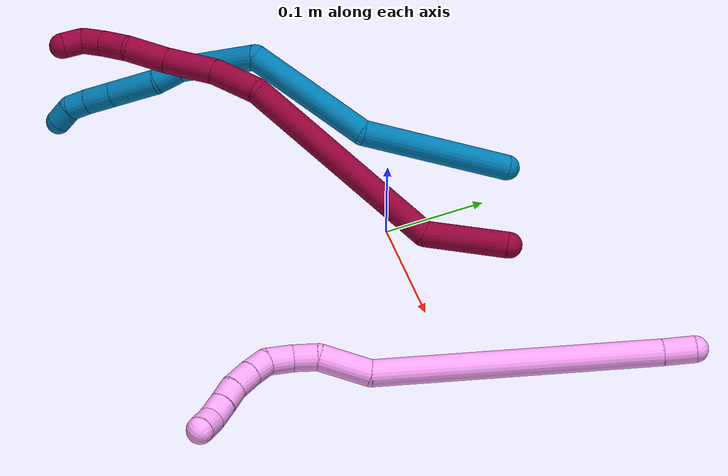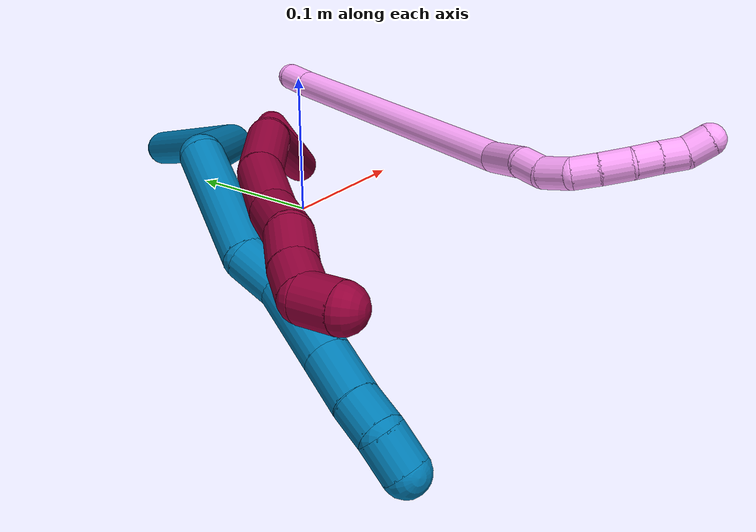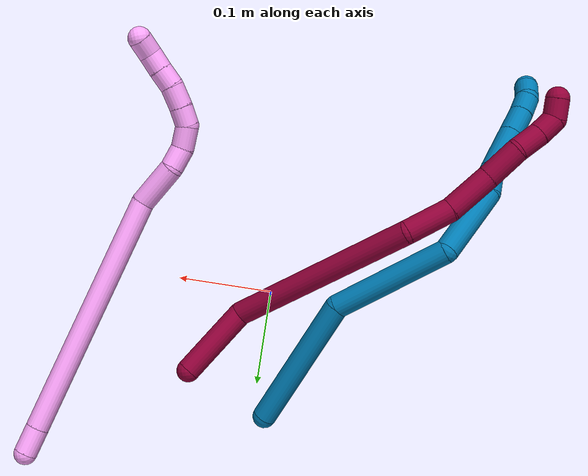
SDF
<sdf version="1.7">
 <world name="default">
  <model name="photoneo_s_sensor">
   <static>1</static>
   <pose>0 0 2 1.57079 1.57079 3.14159</pose>
   <link name="link">
    <inertial><mass>0.1</mass></inertial>
    <sensor name="sensor" type="depth">
     <update_rate>30</update_rate>
     <camera>
      <horizontal_fov>1.22</horizontal_fov>
      <image><width>1920</width><height>1200</height><format>B8G8R8</format></image>
      <clip><near>0.1</near><far>4</far></clip>
      <depth_camera><output>points</output></depth_camera>
     </camera>
     <plugin name="camera_plugin" filename="libgazebo_ros_depth_camera.so">
      <baseline>0.2</baseline>
      <alwaysOn>1</alwaysOn>
      <updateRate>0.0</updateRate>
      <cameraName>camera_ir</cameraName>
      <imageTopicName>/camera/color/image_raw</imageTopicName>
      <cameraInfoTopicName>/camera/color/camera_info</cameraInfoTopicName>
      <depthImageTopicName>/camera/depth/image_raw</depthImageTopicName>
      <depthImageCameraInfoTopicName>/camera/depth/camera_info</depthImageCameraInfoTopicName>
      <pointCloudTopicName>/camera/depth/points</pointCloudTopicName>
      <frameName>fr_optical</frameName>
      <pointCloudCutoff>0.1</pointCloudCutoff>
      <pointCloudCutoffMax>2.0</pointCloudCutoffMax>
      <distortionK1>0</distortionK1>
      <distortionK2>0</distortionK2>
      <distortionK3>0</distortionK3>
      <distortionT1>0</distortionT1>
      <distortionT2>0</distortionT2>
      <CxPrime>0</CxPrime>
      <Cx>0</Cx>
      <Cy>0</Cy>
      <focalLength>0</focalLength>
      <hackBaseline>0</hackBaseline>
     </plugin>
    </sensor>
   </link>
  </model>
  <model name="bin">
   <static>1</static>
   <link name="bottom">
    <collision name="collision-bottom">
     <pose>0 0 -0.01 0 -0 0</pose>
     <geometry><box><size>0.8 0.6 0.02</size></box></geometry>
     <surface>
      <friction><ode><mu>100</mu><mu2>100</mu2></ode></friction>
      <contact><collide_bitmask>65535</collide_bitmask></contact>
     </surface>
    </collision>
   </link>
   <link name="west_wall">
    <collision name="collision-west_wall">
     <pose>-0.41 0 0.1 0 -0 0</pose>
     <geometry><box><size>0.02 0.6 0.2</size></box></geometry>
     <surface>
      <friction><ode><mu>100</mu><mu2>100</mu2></ode></friction>
      <contact><collide_bitmask>65535</collide_bitmask></contact>
     </surface>
    </collision>
   </link>
   <link name="east_wall">
    <collision name="collision-east_wall">
     <pose>0.41 0 0.1 0 -0 0</pose>
     <geometry><box><size>0.02 0.6 0.2</size></box></geometry>
     <surface>
      <friction><ode><mu>100</mu><mu2>100</mu2></ode></friction>
      <contact><collide_bitmask>65535</collide_bitmask></contact>
     </surface>
    </collision>
   </link>
   <link name="south_wall">
    <collision name="collision-south_wall">
     <pose>0 -0.31 0.1 0 -0 0</pose>
     <geometry><box><size>0.8 0.02 0.2</size></box></geometry>
     <surface>
      <friction><ode><mu>100</mu><mu2>100</mu2></ode></friction>
      <contact><collide_bitmask>65535</collide_bitmask></contact>
     </surface>
    </collision>
   </link>
   <link name="north_wall">
    <collision name="collision-north_wall">
     <pose>0 0.31 0.1 0 -0 0</pose>
     <geometry><box><size>0.8 0.02 0.2</size></box></geometry>
     <surface>
      <friction><ode><mu>100</mu><mu2>100</mu2></ode></friction>
      <contact><collide_bitmask>65535</collide_bitmask></contact>
     </surface>
    </collision>
   </link>
  </model>
  <model name="4">
   <static>0</static>
   <link name="4">
    <collision name="collision-cylinder-e_1_1_4">
     <pose>-0.004162 -0.011198 -0.00917 2.25696 -0.279977 -0.578366</pose>
     <geometry><cylinder><radius>0.0125</radius><length>0.03012</length></cylinder></geometry>
     <surface>
      <friction><ode><mu>1.16</mu><mu2>1.16</mu2><slip1>0</slip1><slip2>0</slip2></ode></friction>
      <contact><ode><kp>1e+06</kp><kd>1</kd><max_vel>0</max_vel><min_depth>0.001</min_depth></ode></contact>
     </surface>
    </collision>
    <visual name="visual-cylinder-e_1_1_4">
     <pose>-0.004162 -0.011198 -0.00917 2.25696 -0.279977 -0.578366</pose>
     <geometry><cylinder><radius>0.0125</radius><length>0.03012</length></cylinder></geometry>
     <material><ambient>1 0.65098 0.996078 1</ambient></material>
    </visual>
    <collision name="collision-cylinder-e_2_4_5">
     <pose>-0.049833 -0.119477 -0.099724 2.26846 -0.316647 -0.659387</pose>
     <geometry><cylinder><radius>0.0125</radius><length>0.266617</length></cylinder></geometry>
     <surface>
      <friction><ode><mu>1.16</mu><mu2>1.16</mu2><slip1>0</slip1><slip2>0</slip2></ode></friction>
      <contact><ode><kp>1e+06</kp><kd>1</kd><max_vel>0</max_vel><min_depth>0.001</min_depth></ode></contact>
     </surface>
    </collision>
    <visual name="visual-cylinder-e_2_4_5">
     <pose>-0.049833 -0.119477 -0.099724 2.26846 -0.316647 -0.659387</pose>
     <geometry><cylinder><radius>0.0125</radius><length>0.266617</length></cylinder></geometry>
     <material><ambient>1 0.65098 0.996078 1</ambient></material>
    </visual>
    <collision name="collision-cylinder-e_3_5_6">
     <pose>-0.102844 -0.227189 -0.200248 2.63463 -0.483692 -1.52185</pose>
     <geometry><cylinder><radius>0.0125</radius><length>0.049461</length></cylinder></geometry>
     <surface>
      <friction><ode><mu>1.16</mu><mu2>1.16</mu2><slip1>0</slip1><slip2>0</slip2></ode></friction>
      <contact><ode><kp>1e+06</kp><kd>1</kd><max_vel>0</max_vel><min_depth>0.001</min_depth></ode></contact>
     </surface>
    </collision>
    <visual name="visual-cylinder-e_3_5_6">
     <pose>-0.102844 -0.227189 -0.200248 2.63463 -0.483692 -1.52185</pose>
     <geometry><cylinder><radius>0.0125</radius><length>0.049461</length></cylinder></geometry>
     <material><ambient>1 0.65098 0.996078 1</ambient></material>
    </visual>
    <collision name="collision-cylinder-e_4_6_7">
     <pose>-0.117365 -0.246194 -0.227201 2.3215 -0.25778 -0.579547</pose>
     <geometry><cylinder><radius>0.0125</radius><length>0.02369</length></cylinder></geometry>
     <surface>
      <friction><ode><mu>1.16</mu><mu2>1.16</mu2><slip1>0</slip1><slip2>0</slip2></ode></friction>
      <contact><ode><kp>1e+06</kp><kd>1</kd><max_vel>0</max_vel><min_depth>0.001</min_depth></ode></contact>
     </surface>
    </collision>
    <visual name="visual-cylinder-e_4_6_7">
     <pose>-0.117365 -0.246194 -0.227201 2.3215 -0.25778 -0.579547</pose>
     <geometry><cylinder><radius>0.0125</radius><length>0.02369</length></cylinder></geometry>
     <material><ambient>1 0.65098 0.996078 1</ambient></material>
    </visual>
    <collision name="collision-cylinder-e_5_7_8">
     <pose>-0.127053 -0.263875 -0.240199 2.07908 -0.55931 -0.909183</pose>
     <geometry><cylinder><radius>0.0125</radius><length>0.025137</length></cylinder></geometry>
     <surface>
      <friction><ode><mu>1.16</mu><mu2>1.16</mu2><slip1>0</slip1><slip2>0</slip2></ode></friction>
      <contact><ode><kp>1e+06</kp><kd>1</kd><max_vel>0</max_vel><min_depth>0.001</min_depth></ode></contact>
     </surface>
    </collision>
    <visual name="visual-cylinder-e_5_7_8">
     <pose>-0.127053 -0.263875 -0.240199 2.07908 -0.55931 -0.909183</pose>
     <geometry><cylinder><radius>0.0125</radius><length>0.025137</length></cylinder></geometry>
     <material><ambient>1 0.65098 0.996078 1</ambient></material>
    </visual>
    <collision name="collision-cylinder-e_6_8_9">
     <pose>-0.139417 -0.281896 -0.244267 1.44339 -0.575103 -0.509258</pose>
     <geometry><cylinder><radius>0.0125</radius><length>0.02094</length></cylinder></geometry>
     <surface>
      <friction><ode><mu>1.16</mu><mu2>1.16</mu2><slip1>0</slip1><slip2>0</slip2></ode></friction>
      <contact><ode><kp>1e+06</kp><kd>1</kd><max_vel>0</max_vel><min_depth>0.001</min_depth></ode></contact>
     </surface>
    </collision>
    <visual name="visual-cylinder-e_6_8_9">
     <pose>-0.139417 -0.281896 -0.244267 1.44339 -0.575103 -0.509258</pose>
     <geometry><cylinder><radius>0.0125</radius><length>0.02094</length></cylinder></geometry>
     <material><ambient>1 0.65098 0.996078 1</ambient></material>
    </visual>
    <collision name="collision-cylinder-e_7_9_10">
     <pose>-0.151477 -0.300409 -0.240886 1.34366 -0.564271 -0.453114</pose>
     <geometry><cylinder><radius>0.0125</radius><length>0.023803</length></cylinder></geometry>
     <surface>
      <friction><ode><mu>1.16</mu><mu2>1.16</mu2><slip1>0</slip1><slip2>0</slip2></ode></friction>
      <contact><ode><kp>1e+06</kp><kd>1</kd><max_vel>0</max_vel><min_depth>0.001</min_depth></ode></contact>
     </surface>
    </collision>
    <visual name="visual-cylinder-e_7_9_10">
     <pose>-0.151477 -0.300409 -0.240886 1.34366 -0.564271 -0.453114</pose>
     <geometry><cylinder><radius>0.0125</radius><length>0.023803</length></cylinder></geometry>
     <material><ambient>1 0.65098 0.996078 1</ambient></material>
    </visual>
    <collision name="collision-cylinder-e_8_10_11">
     <pose>-0.162426 -0.318262 -0.234698 1.11753 -0.472915 -0.29907</pose>
     <geometry><cylinder><radius>0.0125</radius><length>0.020127</length></cylinder></geometry>
     <surface>
      <friction><ode><mu>1.16</mu><mu2>1.16</mu2><slip1>0</slip1><slip2>0</slip2></ode></friction>
      <contact><ode><kp>1e+06</kp><kd>1</kd><max_vel>0</max_vel><min_depth>0.001</min_depth></ode></contact>
     </surface>
    </collision>
    <visual name="visual-cylinder-e_8_10_11">
     <pose>-0.162426 -0.318262 -0.234698 1.11753 -0.472915 -0.29907</pose>
     <geometry><cylinder><radius>0.0125</radius><length>0.020127</length></cylinder></geometry>
     <material><ambient>1 0.65098 0.996078 1</ambient></material>
    </visual>
    <collision name="collision-cylinder-e_9_11_12">
     <pose>-0.171468 -0.334571 -0.227298 1.17215 -0.461872 -0.3097</pose>
     <geometry><cylinder><radius>0.0125</radius><length>0.020011</length></cylinder></geometry>
     <surface>
      <friction><ode><mu>1.16</mu><mu2>1.16</mu2><slip1>0</slip1><slip2>0</slip2></ode></friction>
      <contact><ode><kp>1e+06</kp><kd>1</kd><max_vel>0</max_vel><min_depth>0.001</min_depth></ode></contact>
     </surface>
    </collision>
    <visual name="visual-cylinder-e_9_11_12">
     <pose>-0.171468 -0.334571 -0.227298 1.17215 -0.461872 -0.3097</pose>
     <geometry><cylinder><radius>0.0125</radius><length>0.020011</length></cylinder></geometry>
     <material><ambient>1 0.65098 0.996078 1</ambient></material>
    </visual>
    <collision name="collision-cylinder-e_10_12_2">
     <pose>-0.183145 -0.348868 -0.22031 1.04433 -0.801518 -0.478284</pose>
     <geometry><cylinder><radius>0.0125</radius><length>0.020092</length></cylinder></geometry>
     <surface>
      <friction><ode><mu>1.16</mu><mu2>1.16</mu2><slip1>0</slip1><slip2>0</slip2></ode></friction>
      <contact><ode><kp>1e+06</kp><kd>1</kd><max_vel>0</max_vel><min_depth>0.001</min_depth></ode></contact>
     </surface>
    </collision>
    <visual name="visual-cylinder-e_10_12_2">
     <pose>-0.183145 -0.348868 -0.22031 1.04433 -0.801518 -0.478284</pose>
     <geometry><cylinder><radius>0.0125</radius><length>0.020092</length></cylinder></geometry>
     <material><ambient>1 0.65098 0.996078 1</ambient></material>
    </visual>
    <collision name="collision-sphere-2">
     <pose>-0.190362 -0.35491 -0.216798 0 -0 0</pose>
     <geometry><sphere><radius>0.0125</radius></sphere></geometry>
     <surface>
      <friction><ode><mu>1.16</mu><mu2>1.16</mu2><slip1>0</slip1><slip2>0</slip2></ode></friction>
      <contact><ode><kp>1e+06</kp><kd>1</kd><max_vel>0</max_vel><min_depth>0.001</min_depth></ode></contact>
     </surface>
    </collision>
    <visual name="visual-sphere-2">
     <pose>-0.190362 -0.35491 -0.216798 0 -0 0</pose>
     <geometry><sphere><radius>0.0125</radius></sphere></geometry>
     <material><ambient>1 0.65098 0.996078 1</ambient></material>
    </visual>
    <collision name="collision-sphere-12">
     <pose>-0.175927 -0.342826 -0.223821 0 -0 0</pose>
     <geometry><sphere><radius>0.0125</radius></sphere></geometry>
     <surface>
      <friction><ode><mu>1.16</mu><mu2>1.16</mu2><slip1>0</slip1><slip2>0</slip2></ode></friction>
      <contact><ode><kp>1e+06</kp><kd>1</kd><max_vel>0</max_vel><min_depth>0.001</min_depth></ode></contact>
     </surface>
    </collision>
    <visual name="visual-sphere-12">
     <pose>-0.175927 -0.342826 -0.223821 0 -0 0</pose>
     <geometry><sphere><radius>0.0125</radius></sphere></geometry>
     <material><ambient>1 0.65098 0.996078 1</ambient></material>
    </visual>
    <collision name="collision-sphere-11">
     <pose>-0.16701 -0.326316 -0.230775 0 -0 0</pose>
     <geometry><sphere><radius>0.0125</radius></sphere></geometry>
     <surface>
      <friction><ode><mu>1.16</mu><mu2>1.16</mu2><slip1>0</slip1><slip2>0</slip2></ode></friction>
      <contact><ode><kp>1e+06</kp><kd>1</kd><max_vel>0</max_vel><min_depth>0.001</min_depth></ode></contact>
     </surface>
    </collision>
    <visual name="visual-sphere-11">
     <pose>-0.16701 -0.326316 -0.230775 0 -0 0</pose>
     <geometry><sphere><radius>0.0125</radius></sphere></geometry>
     <material><ambient>1 0.65098 0.996078 1</ambient></material>
    </visual>
    <collision name="collision-sphere-10">
     <pose>-0.157842 -0.310207 -0.238621 0 -0 0</pose>
     <geometry><sphere><radius>0.0125</radius></sphere></geometry>
     <surface>
      <friction><ode><mu>1.16</mu><mu2>1.16</mu2><slip1>0</slip1><slip2>0</slip2></ode></friction>
      <contact><ode><kp>1e+06</kp><kd>1</kd><max_vel>0</max_vel><min_depth>0.001</min_depth></ode></contact>
     </surface>
    </collision>
    <visual name="visual-sphere-10">
     <pose>-0.157842 -0.310207 -0.238621 0 -0 0</pose>
     <geometry><sphere><radius>0.0125</radius></sphere></geometry>
     <material><ambient>1 0.65098 0.996078 1</ambient></material>
    </visual>
    <collision name="collision-sphere-9">
     <pose>-0.145112 -0.290611 -0.243151 0 -0 0</pose>
     <geometry><sphere><radius>0.0125</radius></sphere></geometry>
     <surface>
      <friction><ode><mu>1.16</mu><mu2>1.16</mu2><slip1>0</slip1><slip2>0</slip2></ode></friction>
      <contact><ode><kp>1e+06</kp><kd>1</kd><max_vel>0</max_vel><min_depth>0.001</min_depth></ode></contact>
     </surface>
    </collision>
    <visual name="visual-sphere-9">
     <pose>-0.145112 -0.290611 -0.243151 0 -0 0</pose>
     <geometry><sphere><radius>0.0125</radius></sphere></geometry>
     <material><ambient>1 0.65098 0.996078 1</ambient></material>
    </visual>
    <collision name="collision-sphere-4">
     <pose>-0.008323 -0.022396 -0.01834 0 -0 0</pose>
     <geometry><sphere><radius>0.0125</radius></sphere></geometry>
     <surface>
      <friction><ode><mu>1.16</mu><mu2>1.16</mu2><slip1>0</slip1><slip2>0</slip2></ode></friction>
      <contact><ode><kp>1e+06</kp><kd>1</kd><max_vel>0</max_vel><min_depth>0.001</min_depth></ode></contact>
     </surface>
    </collision>
    <visual name="visual-sphere-4">
     <pose>-0.008323 -0.022396 -0.01834 0 -0 0</pose>
     <geometry><sphere><radius>0.0125</radius></sphere></geometry>
     <material><ambient>1 0.65098 0.996078 1</ambient></material>
    </visual>
    <collision name="collision-sphere-1">
     <geometry><sphere><radius>0.0125</radius></sphere></geometry>
     <surface>
      <friction><ode><mu>1.16</mu><mu2>1.16</mu2><slip1>0</slip1><slip2>0</slip2></ode></friction>
      <contact><ode><kp>1e+06</kp><kd>1</kd><max_vel>0</max_vel><min_depth>0.001</min_depth></ode></contact>
     </surface>
    </collision>
    <visual name="visual-sphere-1">
     <geometry><sphere><radius>0.0125</radius></sphere></geometry>
     <material><ambient>1 0.65098 0.996078 1</ambient></material>
    </visual>
    <collision name="collision-sphere-8">
     <pose>-0.133722 -0.273182 -0.245383 0 -0 0</pose>
     <geometry><sphere><radius>0.0125</radius></sphere></geometry>
     <surface>
      <friction><ode><mu>1.16</mu><mu2>1.16</mu2><slip1>0</slip1><slip2>0</slip2></ode></friction>
      <contact><ode><kp>1e+06</kp><kd>1</kd><max_vel>0</max_vel><min_depth>0.001</min_depth></ode></contact>
     </surface>
    </collision>
    <visual name="visual-sphere-8">
     <pose>-0.133722 -0.273182 -0.245383 0 -0 0</pose>
     <geometry><sphere><radius>0.0125</radius></sphere></geometry>
     <material><ambient>1 0.65098 0.996078 1</ambient></material>
    </visual>
    <collision name="collision-sphere-5">
     <pose>-0.091343 -0.216559 -0.181108 0 -0 0</pose>
     <geometry><sphere><radius>0.0125</radius></sphere></geometry>
     <surface>
      <friction><ode><mu>1.16</mu><mu2>1.16</mu2><slip1>0</slip1><slip2>0</slip2></ode></friction>
      <contact><ode><kp>1e+06</kp><kd>1</kd><max_vel>0</max_vel><min_depth>0.001</min_depth></ode></contact>
     </surface>
    </collision>
    <visual name="visual-sphere-5">
     <pose>-0.091343 -0.216559 -0.181108 0 -0 0</pose>
     <geometry><sphere><radius>0.0125</radius></sphere></geometry>
     <material><ambient>1 0.65098 0.996078 1</ambient></material>
    </visual>
    <collision name="collision-sphere-6">
     <pose>-0.114345 -0.237819 -0.219388 0 -0 0</pose>
     <geometry><sphere><radius>0.0125</radius></sphere></geometry>
     <surface>
      <friction><ode><mu>1.16</mu><mu2>1.16</mu2><slip1>0</slip1><slip2>0</slip2></ode></friction>
      <contact><ode><kp>1e+06</kp><kd>1</kd><max_vel>0</max_vel><min_depth>0.001</min_depth></ode></contact>
     </surface>
    </collision>
    <visual name="visual-sphere-6">
     <pose>-0.114345 -0.237819 -0.219388 0 -0 0</pose>
     <geometry><sphere><radius>0.0125</radius></sphere></geometry>
     <material><ambient>1 0.65098 0.996078 1</ambient></material>
    </visual>
    <collision name="collision-sphere-7">
     <pose>-0.120385 -0.254569 -0.235014 0 -0 0</pose>
     <geometry><sphere><radius>0.0125</radius></sphere></geometry>
     <surface>
      <friction><ode><mu>1.16</mu><mu2>1.16</mu2><slip1>0</slip1><slip2>0</slip2></ode></friction>
      <contact><ode><kp>1e+06</kp><kd>1</kd><max_vel>0</max_vel><min_depth>0.001</min_depth></ode></contact>
     </surface>
    </collision>
    <visual name="visual-sphere-7">
     <pose>-0.120385 -0.254569 -0.235014 0 -0 0</pose>
     <geometry><sphere><radius>0.0125</radius></sphere></geometry>
     <material><ambient>1 0.65098 0.996078 1</ambient></material>
    </visual>
    <inertial>
     <pose>-0.082756 -0.178117 -0.145474 0 -0 0</pose>
     <mass>0.5</mass>
     <inertia>
      <ixx>0.000248</ixx>
      <ixy>0</ixy>
      <ixz>0</ixz>
      <iyy>-0.001542</iyy>
      <iyz>0</iyz>
      <izz>0.001666</izz>
     </inertia>
    </inertial>
   </link>
   <pose>0.232849 0.211032 0.013531 1.42234 1.20057 1.80906</pose>
  </model>
  <model name="8">
   <static>0</static>
   <link name="8">
    <collision name="collision-cylinder-e_1_1_4">
     <pose>-0.009166 -0.029802 0.026218 0.849275 -0.226952 -0.102967</pose>
     <geometry><cylinder><radius>0.0125</radius><length>0.081475</length></cylinder></geometry>
     <surface>
      <friction><ode><mu>1.16</mu><mu2>1.16</mu2><slip1>0</slip1><slip2>0</slip2></ode></friction>
      <contact><ode><kp>1e+06</kp><kd>1</kd><max_vel>0</max_vel><min_depth>0.001</min_depth></ode></contact>
     </surface>
    </collision>
    <visual name="visual-cylinder-e_1_1_4">
     <pose>-0.009166 -0.029802 0.026218 0.849275 -0.226952 -0.102967</pose>
     <geometry><cylinder><radius>0.0125</radius><length>0.081475</length></cylinder></geometry>
     <material><ambient>0.584314 0 0.227451 1</ambient></material>
    </visual>
    <collision name="collision-cylinder-e_2_4_5">
     <pose>-0.093815 -0.122649 0.086512 1.07529 -0.811337 -0.501381</pose>
     <geometry><cylinder><radius>0.0125</radius><length>0.208168</length></cylinder></geometry>
     <surface>
      <friction><ode><mu>1.16</mu><mu2>1.16</mu2><slip1>0</slip1><slip2>0</slip2></ode></friction>
      <contact><ode><kp>1e+06</kp><kd>1</kd><max_vel>0</max_vel><min_depth>0.001</min_depth></ode></contact>
     </surface>
    </collision>
    <visual name="visual-cylinder-e_2_4_5">
     <pose>-0.093815 -0.122649 0.086512 1.07529 -0.811337 -0.501381</pose>
     <geometry><cylinder><radius>0.0125</radius><length>0.208168</length></cylinder></geometry>
     <material><ambient>0.584314 0 0.227451 1</ambient></material>
    </visual>
    <collision name="collision-cylinder-e_3_5_6">
     <pose>-0.17739 -0.207309 0.129034 1.19822 -0.335525 -0.230259</pose>
     <geometry><cylinder><radius>0.0125</radius><length>0.049153</length></cylinder></geometry>
     <surface>
      <friction><ode><mu>1.16</mu><mu2>1.16</mu2><slip1>0</slip1><slip2>0</slip2></ode></friction>
      <contact><ode><kp>1e+06</kp><kd>1</kd><max_vel>0</max_vel><min_depth>0.001</min_depth></ode></contact>
     </surface>
    </collision>
    <visual name="visual-cylinder-e_3_5_6">
     <pose>-0.17739 -0.207309 0.129034 1.19822 -0.335525 -0.230259</pose>
     <geometry><cylinder><radius>0.0125</radius><length>0.049153</length></cylinder></geometry>
     <material><ambient>0.584314 0 0.227451 1</ambient></material>
    </visual>
    <collision name="collision-cylinder-e_4_6_7">
     <pose>-0.192493 -0.248697 0.151417 0.956887 -0.282091 -0.147015</pose>
     <geometry><cylinder><radius>0.0125</radius><length>0.050373</length></cylinder></geometry>
     <surface>
      <friction><ode><mu>1.16</mu><mu2>1.16</mu2><slip1>0</slip1><slip2>0</slip2></ode></friction>
      <contact><ode><kp>1e+06</kp><kd>1</kd><max_vel>0</max_vel><min_depth>0.001</min_depth></ode></contact>
     </surface>
    </collision>
    <visual name="visual-cylinder-e_4_6_7">
     <pose>-0.192493 -0.248697 0.151417 0.956887 -0.282091 -0.147015</pose>
     <geometry><cylinder><radius>0.0125</radius><length>0.050373</length></cylinder></geometry>
     <material><ambient>0.584314 0 0.227451 1</ambient></material>
    </visual>
    <collision name="collision-cylinder-e_5_7_8">
     <pose>-0.207748 -0.282274 0.177114 0.865116 -0.426656 -0.199377</pose>
     <geometry><cylinder><radius>0.0125</radius><length>0.03984</length></cylinder></geometry>
     <surface>
      <friction><ode><mu>1.16</mu><mu2>1.16</mu2><slip1>0</slip1><slip2>0</slip2></ode></friction>
      <contact><ode><kp>1e+06</kp><kd>1</kd><max_vel>0</max_vel><min_depth>0.001</min_depth></ode></contact>
     </surface>
    </collision>
    <visual name="visual-cylinder-e_5_7_8">
     <pose>-0.207748 -0.282274 0.177114 0.865116 -0.426656 -0.199377</pose>
     <geometry><cylinder><radius>0.0125</radius><length>0.03984</length></cylinder></geometry>
     <material><ambient>0.584314 0 0.227451 1</ambient></material>
    </visual>
    <collision name="collision-cylinder-e_6_8_9">
     <pose>-0.218343 -0.307945 0.195262 1.07703 -0.172742 -0.103364</pose>
     <geometry><cylinder><radius>0.0125</radius><length>0.027363</length></cylinder></geometry>
     <surface>
      <friction><ode><mu>1.16</mu><mu2>1.16</mu2><slip1>0</slip1><slip2>0</slip2></ode></friction>
      <contact><ode><kp>1e+06</kp><kd>1</kd><max_vel>0</max_vel><min_depth>0.001</min_depth></ode></contact>
     </surface>
    </collision>
    <visual name="visual-cylinder-e_6_8_9">
     <pose>-0.218343 -0.307945 0.195262 1.07703 -0.172742 -0.103364</pose>
     <geometry><cylinder><radius>0.0125</radius><length>0.027363</length></cylinder></geometry>
     <material><ambient>0.584314 0 0.227451 1</ambient></material>
    </visual>
    <collision name="collision-cylinder-e_7_9_10">
     <pose>-0.222787 -0.328892 0.208071 0.955273 -0.18599 -0.096474</pose>
     <geometry><cylinder><radius>0.0125</radius><length>0.022631</length></cylinder></geometry>
     <surface>
      <friction><ode><mu>1.16</mu><mu2>1.16</mu2><slip1>0</slip1><slip2>0</slip2></ode></friction>
      <contact><ode><kp>1e+06</kp><kd>1</kd><max_vel>0</max_vel><min_depth>0.001</min_depth></ode></contact>
     </surface>
    </collision>
    <visual name="visual-cylinder-e_7_9_10">
     <pose>-0.222787 -0.328892 0.208071 0.955273 -0.18599 -0.096474</pose>
     <geometry><cylinder><radius>0.0125</radius><length>0.022631</length></cylinder></geometry>
     <material><ambient>0.584314 0 0.227451 1</ambient></material>
    </visual>
    <collision name="collision-cylinder-e_8_10_2">
     <pose>-0.226126 -0.340456 0.224615 0.240673 -0.118993 -0.014405</pose>
     <geometry><cylinder><radius>0.0125</radius><length>0.020996</length></cylinder></geometry>
     <surface>
      <friction><ode><mu>1.16</mu><mu2>1.16</mu2><slip1>0</slip1><slip2>0</slip2></ode></friction>
      <contact><ode><kp>1e+06</kp><kd>1</kd><max_vel>0</max_vel><min_depth>0.001</min_depth></ode></contact>
     </surface>
    </collision>
    <visual name="visual-cylinder-e_8_10_2">
     <pose>-0.226126 -0.340456 0.224615 0.240673 -0.118993 -0.014405</pose>
     <geometry><cylinder><radius>0.0125</radius><length>0.020996</length></cylinder></geometry>
     <material><ambient>0.584314 0 0.227451 1</ambient></material>
    </visual>
    <collision name="collision-sphere-2">
     <pose>-0.227372 -0.342941 0.234739 0 -0 0</pose>
     <geometry><sphere><radius>0.0125</radius></sphere></geometry>
     <surface>
      <friction><ode><mu>1.16</mu><mu2>1.16</mu2><slip1>0</slip1><slip2>0</slip2></ode></friction>
      <contact><ode><kp>1e+06</kp><kd>1</kd><max_vel>0</max_vel><min_depth>0.001</min_depth></ode></contact>
     </surface>
    </collision>
    <visual name="visual-sphere-2">
     <pose>-0.227372 -0.342941 0.234739 0 -0 0</pose>
     <geometry><sphere><radius>0.0125</radius></sphere></geometry>
     <material><ambient>0.584314 0 0.227451 1</ambient></material>
    </visual>
    <collision name="collision-sphere-10">
     <pose>-0.22488 -0.337972 0.214492 0 -0 0</pose>
     <geometry><sphere><radius>0.0125</radius></sphere></geometry>
     <surface>
      <friction><ode><mu>1.16</mu><mu2>1.16</mu2><slip1>0</slip1><slip2>0</slip2></ode></friction>
      <contact><ode><kp>1e+06</kp><kd>1</kd><max_vel>0</max_vel><min_depth>0.001</min_depth></ode></contact>
     </surface>
    </collision>
    <visual name="visual-sphere-10">
     <pose>-0.22488 -0.337972 0.214492 0 -0 0</pose>
     <geometry><sphere><radius>0.0125</radius></sphere></geometry>
     <material><ambient>0.584314 0 0.227451 1</ambient></material>
    </visual>
    <collision name="collision-sphere-9">
     <pose>-0.220695 -0.319813 0.20165 0 -0 0</pose>
     <geometry><sphere><radius>0.0125</radius></sphere></geometry>
     <surface>
      <friction><ode><mu>1.16</mu><mu2>1.16</mu2><slip1>0</slip1><slip2>0</slip2></ode></friction>
      <contact><ode><kp>1e+06</kp><kd>1</kd><max_vel>0</max_vel><min_depth>0.001</min_depth></ode></contact>
     </surface>
    </collision>
    <visual name="visual-sphere-9">
     <pose>-0.220695 -0.319813 0.20165 0 -0 0</pose>
     <geometry><sphere><radius>0.0125</radius></sphere></geometry>
     <material><ambient>0.584314 0 0.227451 1</ambient></material>
    </visual>
    <collision name="collision-sphere-4">
     <pose>-0.018333 -0.059603 0.052437 0 -0 0</pose>
     <geometry><sphere><radius>0.0125</radius></sphere></geometry>
     <surface>
      <friction><ode><mu>1.16</mu><mu2>1.16</mu2><slip1>0</slip1><slip2>0</slip2></ode></friction>
      <contact><ode><kp>1e+06</kp><kd>1</kd><max_vel>0</max_vel><min_depth>0.001</min_depth></ode></contact>
     </surface>
    </collision>
    <visual name="visual-sphere-4">
     <pose>-0.018333 -0.059603 0.052437 0 -0 0</pose>
     <geometry><sphere><radius>0.0125</radius></sphere></geometry>
     <material><ambient>0.584314 0 0.227451 1</ambient></material>
    </visual>
    <collision name="collision-sphere-1">
     <geometry><sphere><radius>0.0125</radius></sphere></geometry>
     <surface>
      <friction><ode><mu>1.16</mu><mu2>1.16</mu2><slip1>0</slip1><slip2>0</slip2></ode></friction>
      <contact><ode><kp>1e+06</kp><kd>1</kd><max_vel>0</max_vel><min_depth>0.001</min_depth></ode></contact>
     </surface>
    </collision>
    <visual name="visual-sphere-1">
     <geometry><sphere><radius>0.0125</radius></sphere></geometry>
     <material><ambient>0.584314 0 0.227451 1</ambient></material>
    </visual>
    <collision name="collision-sphere-8">
     <pose>-0.215991 -0.296077 0.188875 0 -0 0</pose>
     <geometry><sphere><radius>0.0125</radius></sphere></geometry>
     <surface>
      <friction><ode><mu>1.16</mu><mu2>1.16</mu2><slip1>0</slip1><slip2>0</slip2></ode></friction>
      <contact><ode><kp>1e+06</kp><kd>1</kd><max_vel>0</max_vel><min_depth>0.001</min_depth></ode></contact>
     </surface>
    </collision>
    <visual name="visual-sphere-8">
     <pose>-0.215991 -0.296077 0.188875 0 -0 0</pose>
     <geometry><sphere><radius>0.0125</radius></sphere></geometry>
     <material><ambient>0.584314 0 0.227451 1</ambient></material>
    </visual>
    <collision name="collision-sphere-5">
     <pose>-0.169298 -0.185695 0.120587 0 -0 0</pose>
     <geometry><sphere><radius>0.0125</radius></sphere></geometry>
     <surface>
      <friction><ode><mu>1.16</mu><mu2>1.16</mu2><slip1>0</slip1><slip2>0</slip2></ode></friction>
      <contact><ode><kp>1e+06</kp><kd>1</kd><max_vel>0</max_vel><min_depth>0.001</min_depth></ode></contact>
     </surface>
    </collision>
    <visual name="visual-sphere-5">
     <pose>-0.169298 -0.185695 0.120587 0 -0 0</pose>
     <geometry><sphere><radius>0.0125</radius></sphere></geometry>
     <material><ambient>0.584314 0 0.227451 1</ambient></material>
    </visual>
    <collision name="collision-sphere-6">
     <pose>-0.185482 -0.228923 0.137481 0 -0 0</pose>
     <geometry><sphere><radius>0.0125</radius></sphere></geometry>
     <surface>
      <friction><ode><mu>1.16</mu><mu2>1.16</mu2><slip1>0</slip1><slip2>0</slip2></ode></friction>
      <contact><ode><kp>1e+06</kp><kd>1</kd><max_vel>0</max_vel><min_depth>0.001</min_depth></ode></contact>
     </surface>
    </collision>
    <visual name="visual-sphere-6">
     <pose>-0.185482 -0.228923 0.137481 0 -0 0</pose>
     <geometry><sphere><radius>0.0125</radius></sphere></geometry>
     <material><ambient>0.584314 0 0.227451 1</ambient></material>
    </visual>
    <collision name="collision-sphere-7">
     <pose>-0.199504 -0.26847 0.165353 0 -0 0</pose>
     <geometry><sphere><radius>0.0125</radius></sphere></geometry>
     <surface>
      <friction><ode><mu>1.16</mu><mu2>1.16</mu2><slip1>0</slip1><slip2>0</slip2></ode></friction>
      <contact><ode><kp>1e+06</kp><kd>1</kd><max_vel>0</max_vel><min_depth>0.001</min_depth></ode></contact>
     </surface>
    </collision>
    <visual name="visual-sphere-7">
     <pose>-0.199504 -0.26847 0.165353 0 -0 0</pose>
     <geometry><sphere><radius>0.0125</radius></sphere></geometry>
     <material><ambient>0.584314 0 0.227451 1</ambient></material>
    </visual>
    <inertial>
     <pose>-0.125466 -0.169881 0.111878 0 -0 0</pose>
     <mass>0.5</mass>
     <inertia>
      <ixx>0.000261</ixx>
      <ixy>0</ixy>
      <ixz>0</ixz>
      <iyy>0.000315</iyy>
      <iyz>0</iyz>
      <izz>0.001116</izz>
     </inertia>
    </inertial>
   </link>
   <pose>0.073579 0.094807 0.026788 1.46545 1.13135 0.182804</pose>
  </model>
  <model name="9">
   <static>0</static>
   <link name="9">
    <collision name="collision-cylinder-e_1_1_4">
     <pose>3.2e-05 1.5e-05 0.073694 -0.000205 0.000435 0</pose>
     <geometry><cylinder><radius>0.0125</radius><length>0.147387</length></cylinder></geometry>
     <surface>
      <friction><ode><mu>1.16</mu><mu2>1.16</mu2><slip1>0</slip1><slip2>0</slip2></ode></friction>
      <contact><ode><kp>1e+06</kp><kd>1</kd><max_vel>0</max_vel><min_depth>0.001</min_depth></ode></contact>
     </surface>
    </collision>
    <visual name="visual-cylinder-e_1_1_4">
     <pose>3.2e-05 1.5e-05 0.073694 -0.000205 0.000435 0</pose>
     <geometry><cylinder><radius>0.0125</radius><length>0.147387</length></cylinder></geometry>
     <material><ambient>0 0.490196 0.709804 1</ambient></material>
    </visual>
    <collision name="collision-cylinder-e_2_4_5">
     <pose>-0.0302 -0.001762 0.202878 0.032282 -0.49908 -0.008228</pose>
     <geometry><cylinder><radius>0.0125</radius><length>0.126465</length></cylinder></geometry>
     <surface>
      <friction><ode><mu>1.16</mu><mu2>1.16</mu2><slip1>0</slip1><slip2>0</slip2></ode></friction>
      <contact><ode><kp>1e+06</kp><kd>1</kd><max_vel>0</max_vel><min_depth>0.001</min_depth></ode></contact>
     </surface>
    </collision>
    <visual name="visual-cylinder-e_2_4_5">
     <pose>-0.0302 -0.001762 0.202878 0.032282 -0.49908 -0.008228</pose>
     <geometry><cylinder><radius>0.0125</radius><length>0.126465</length></cylinder></geometry>
     <material><ambient>0 0.490196 0.709804 1</ambient></material>
    </visual>
    <collision name="collision-cylinder-e_3_5_6">
     <pose>-0.063043 -0.029914 0.289433 0.703652 -0.063224 -0.023216</pose>
     <geometry><cylinder><radius>0.0125</radius><length>0.081646</length></cylinder></geometry>
     <surface>
      <friction><ode><mu>1.16</mu><mu2>1.16</mu2><slip1>0</slip1><slip2>0</slip2></ode></friction>
      <contact><ode><kp>1e+06</kp><kd>1</kd><max_vel>0</max_vel><min_depth>0.001</min_depth></ode></contact>
     </surface>
    </collision>
    <visual name="visual-cylinder-e_3_5_6">
     <pose>-0.063043 -0.029914 0.289433 0.703652 -0.063224 -0.023216</pose>
     <geometry><cylinder><radius>0.0125</radius><length>0.081646</length></cylinder></geometry>
     <material><ambient>0 0.490196 0.709804 1</ambient></material>
    </visual>
    <collision name="collision-cylinder-e_4_6_7">
     <pose>-0.060777 -0.064106 0.330147 0.681836 0.371785 0.133241</pose>
     <geometry><cylinder><radius>0.0125</radius><length>0.026679</length></cylinder></geometry>
     <surface>
      <friction><ode><mu>1.16</mu><mu2>1.16</mu2><slip1>0</slip1><slip2>0</slip2></ode></friction>
      <contact><ode><kp>1e+06</kp><kd>1</kd><max_vel>0</max_vel><min_depth>0.001</min_depth></ode></contact>
     </surface>
    </collision>
    <visual name="visual-cylinder-e_4_6_7">
     <pose>-0.060777 -0.064106 0.330147 0.681836 0.371785 0.133241</pose>
     <geometry><cylinder><radius>0.0125</radius><length>0.026679</length></cylinder></geometry>
     <material><ambient>0 0.490196 0.709804 1</ambient></material>
    </visual>
    <collision name="collision-cylinder-e_5_7_8">
     <pose>-0.054084 -0.087829 0.357987 0.718023 0.076296 0.028644</pose>
     <geometry><cylinder><radius>0.0125</radius><length>0.048447</length></cylinder></geometry>
     <surface>
      <friction><ode><mu>1.16</mu><mu2>1.16</mu2><slip1>0</slip1><slip2>0</slip2></ode></friction>
      <contact><ode><kp>1e+06</kp><kd>1</kd><max_vel>0</max_vel><min_depth>0.001</min_depth></ode></contact>
     </surface>
    </collision>
    <visual name="visual-cylinder-e_5_7_8">
     <pose>-0.054084 -0.087829 0.357987 0.718023 0.076296 0.028644</pose>
     <geometry><cylinder><radius>0.0125</radius><length>0.048447</length></cylinder></geometry>
     <material><ambient>0 0.490196 0.709804 1</ambient></material>
    </visual>
    <collision name="collision-cylinder-e_6_8_9">
     <pose>-0.051189 -0.113035 0.386835 0.718245 0.073977 0.027782</pose>
     <geometry><cylinder><radius>0.0125</radius><length>0.028389</length></cylinder></geometry>
     <surface>
      <friction><ode><mu>1.16</mu><mu2>1.16</mu2><slip1>0</slip1><slip2>0</slip2></ode></friction>
      <contact><ode><kp>1e+06</kp><kd>1</kd><max_vel>0</max_vel><min_depth>0.001</min_depth></ode></contact>
     </surface>
    </collision>
    <visual name="visual-cylinder-e_6_8_9">
     <pose>-0.051189 -0.113035 0.386835 0.718245 0.073977 0.027782</pose>
     <geometry><cylinder><radius>0.0125</radius><length>0.028389</length></cylinder></geometry>
     <material><ambient>0 0.490196 0.709804 1</ambient></material>
    </visual>
    <collision name="collision-cylinder-e_7_9_10">
     <pose>-0.048519 -0.128927 0.404996 0.719817 0.161028 0.060707</pose>
     <geometry><cylinder><radius>0.0125</radius><length>0.020216</length></cylinder></geometry>
     <surface>
      <friction><ode><mu>1.16</mu><mu2>1.16</mu2><slip1>0</slip1><slip2>0</slip2></ode></friction>
      <contact><ode><kp>1e+06</kp><kd>1</kd><max_vel>0</max_vel><min_depth>0.001</min_depth></ode></contact>
     </surface>
    </collision>
    <visual name="visual-cylinder-e_7_9_10">
     <pose>-0.048519 -0.128927 0.404996 0.719817 0.161028 0.060707</pose>
     <geometry><cylinder><radius>0.0125</radius><length>0.020216</length></cylinder></geometry>
     <material><ambient>0 0.490196 0.709804 1</ambient></material>
    </visual>
    <collision name="collision-cylinder-e_8_10_2">
     <pose>-0.043544 -0.144561 0.416316 1.1718 0.328941 0.219401</pose>
     <geometry><cylinder><radius>0.0125</radius><length>0.020771</length></cylinder></geometry>
     <surface>
      <friction><ode><mu>1.16</mu><mu2>1.16</mu2><slip1>0</slip1><slip2>0</slip2></ode></friction>
      <contact><ode><kp>1e+06</kp><kd>1</kd><max_vel>0</max_vel><min_depth>0.001</min_depth></ode></contact>
     </surface>
    </collision>
    <visual name="visual-cylinder-e_8_10_2">
     <pose>-0.043544 -0.144561 0.416316 1.1718 0.328941 0.219401</pose>
     <geometry><cylinder><radius>0.0125</radius><length>0.020771</length></cylinder></geometry>
     <material><ambient>0 0.490196 0.709804 1</ambient></material>
    </visual>
    <collision name="collision-sphere-2">
     <pose>-0.040189 -0.153618 0.420135 0 -0 0</pose>
     <geometry><sphere><radius>0.0125</radius></sphere></geometry>
     <surface>
      <friction><ode><mu>1.16</mu><mu2>1.16</mu2><slip1>0</slip1><slip2>0</slip2></ode></friction>
      <contact><ode><kp>1e+06</kp><kd>1</kd><max_vel>0</max_vel><min_depth>0.001</min_depth></ode></contact>
     </surface>
    </collision>
    <visual name="visual-sphere-2">
     <pose>-0.040189 -0.153618 0.420135 0 -0 0</pose>
     <geometry><sphere><radius>0.0125</radius></sphere></geometry>
     <material><ambient>0 0.490196 0.709804 1</ambient></material>
    </visual>
    <collision name="collision-sphere-10">
     <pose>-0.046899 -0.135505 0.412498 0 -0 0</pose>
     <geometry><sphere><radius>0.0125</radius></sphere></geometry>
     <surface>
      <friction><ode><mu>1.16</mu><mu2>1.16</mu2><slip1>0</slip1><slip2>0</slip2></ode></friction>
      <contact><ode><kp>1e+06</kp><kd>1</kd><max_vel>0</max_vel><min_depth>0.001</min_depth></ode></contact>
     </surface>
    </collision>
    <visual name="visual-sphere-10">
     <pose>-0.046899 -0.135505 0.412498 0 -0 0</pose>
     <geometry><sphere><radius>0.0125</radius></sphere></geometry>
     <material><ambient>0 0.490196 0.709804 1</ambient></material>
    </visual>
    <collision name="collision-sphere-9">
     <pose>-0.05014 -0.12235 0.397494 0 -0 0</pose>
     <geometry><sphere><radius>0.0125</radius></sphere></geometry>
     <surface>
      <friction><ode><mu>1.16</mu><mu2>1.16</mu2><slip1>0</slip1><slip2>0</slip2></ode></friction>
      <contact><ode><kp>1e+06</kp><kd>1</kd><max_vel>0</max_vel><min_depth>0.001</min_depth></ode></contact>
     </surface>
    </collision>
    <visual name="visual-sphere-9">
     <pose>-0.05014 -0.12235 0.397494 0 -0 0</pose>
     <geometry><sphere><radius>0.0125</radius></sphere></geometry>
     <material><ambient>0 0.490196 0.709804 1</ambient></material>
    </visual>
    <collision name="collision-sphere-4">
     <pose>6.4e-05 3e-05 0.147387 0 -0 0</pose>
     <geometry><sphere><radius>0.0125</radius></sphere></geometry>
     <surface>
      <friction><ode><mu>1.16</mu><mu2>1.16</mu2><slip1>0</slip1><slip2>0</slip2></ode></friction>
      <contact><ode><kp>1e+06</kp><kd>1</kd><max_vel>0</max_vel><min_depth>0.001</min_depth></ode></contact>
     </surface>
    </collision>
    <visual name="visual-sphere-4">
     <pose>6.4e-05 3e-05 0.147387 0 -0 0</pose>
     <geometry><sphere><radius>0.0125</radius></sphere></geometry>
     <material><ambient>0 0.490196 0.709804 1</ambient></material>
    </visual>
    <collision name="collision-sphere-1">
     <geometry><sphere><radius>0.0125</radius></sphere></geometry>
     <surface>
      <friction><ode><mu>1.16</mu><mu2>1.16</mu2><slip1>0</slip1><slip2>0</slip2></ode></friction>
      <contact><ode><kp>1e+06</kp><kd>1</kd><max_vel>0</max_vel><min_depth>0.001</min_depth></ode></contact>
     </surface>
    </collision>
    <visual name="visual-sphere-1">
     <geometry><sphere><radius>0.0125</radius></sphere></geometry>
     <material><ambient>0 0.490196 0.709804 1</ambient></material>
    </visual>
    <collision name="collision-sphere-8">
     <pose>-0.052238 -0.103719 0.376176 0 -0 0</pose>
     <geometry><sphere><radius>0.0125</radius></sphere></geometry>
     <surface>
      <friction><ode><mu>1.16</mu><mu2>1.16</mu2><slip1>0</slip1><slip2>0</slip2></ode></friction>
      <contact><ode><kp>1e+06</kp><kd>1</kd><max_vel>0</max_vel><min_depth>0.001</min_depth></ode></contact>
     </surface>
    </collision>
    <visual name="visual-sphere-8">
     <pose>-0.052238 -0.103719 0.376176 0 -0 0</pose>
     <geometry><sphere><radius>0.0125</radius></sphere></geometry>
     <material><ambient>0 0.490196 0.709804 1</ambient></material>
    </visual>
    <collision name="collision-sphere-5">
     <pose>-0.060464 -0.003554 0.258368 0 -0 0</pose>
     <geometry><sphere><radius>0.0125</radius></sphere></geometry>
     <surface>
      <friction><ode><mu>1.16</mu><mu2>1.16</mu2><slip1>0</slip1><slip2>0</slip2></ode></friction>
      <contact><ode><kp>1e+06</kp><kd>1</kd><max_vel>0</max_vel><min_depth>0.001</min_depth></ode></contact>
     </surface>
    </collision>
    <visual name="visual-sphere-5">
     <pose>-0.060464 -0.003554 0.258368 0 -0 0</pose>
     <geometry><sphere><radius>0.0125</radius></sphere></geometry>
     <material><ambient>0 0.490196 0.709804 1</ambient></material>
    </visual>
    <collision name="collision-sphere-6">
     <pose>-0.065623 -0.056274 0.320498 0 -0 0</pose>
     <geometry><sphere><radius>0.0125</radius></sphere></geometry>
     <surface>
      <friction><ode><mu>1.16</mu><mu2>1.16</mu2><slip1>0</slip1><slip2>0</slip2></ode></friction>
      <contact><ode><kp>1e+06</kp><kd>1</kd><max_vel>0</max_vel><min_depth>0.001</min_depth></ode></contact>
     </surface>
    </collision>
    <visual name="visual-sphere-6">
     <pose>-0.065623 -0.056274 0.320498 0 -0 0</pose>
     <geometry><sphere><radius>0.0125</radius></sphere></geometry>
     <material><ambient>0 0.490196 0.709804 1</ambient></material>
    </visual>
    <collision name="collision-sphere-7">
     <pose>-0.055931 -0.071939 0.339797 0 -0 0</pose>
     <geometry><sphere><radius>0.0125</radius></sphere></geometry>
     <surface>
      <friction><ode><mu>1.16</mu><mu2>1.16</mu2><slip1>0</slip1><slip2>0</slip2></ode></friction>
      <contact><ode><kp>1e+06</kp><kd>1</kd><max_vel>0</max_vel><min_depth>0.001</min_depth></ode></contact>
     </surface>
    </collision>
    <visual name="visual-sphere-7">
     <pose>-0.055931 -0.071939 0.339797 0 -0 0</pose>
     <geometry><sphere><radius>0.0125</radius></sphere></geometry>
     <material><ambient>0 0.490196 0.709804 1</ambient></material>
    </visual>
    <inertial>
     <pose>-0.033084 -0.034892 0.228235 0 -0 0</pose>
     <mass>0.5</mass>
     <inertia>
      <ixx>0.000489</ixx>
      <ixy>0</ixy>
      <ixz>0</ixz>
      <iyy>0.000485</iyy>
      <iyz>0</iyz>
      <izz>0.000166</izz>
     </inertia>
    </inertial>
   </link>
   <pose>-0.013649 0.130242 0.025551 1.25498 0.055874 -0.426175</pose>
  </model>
 </world>
</sdf>
